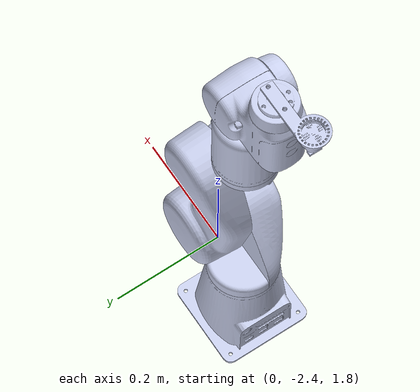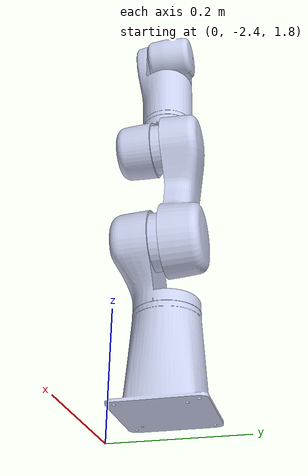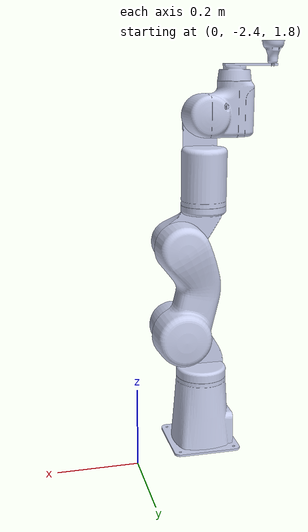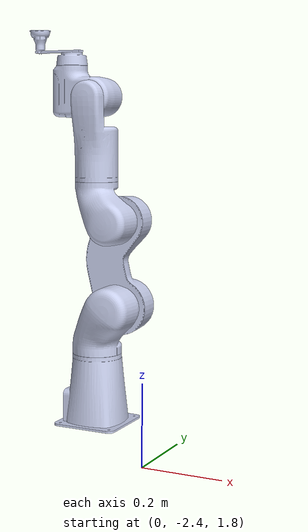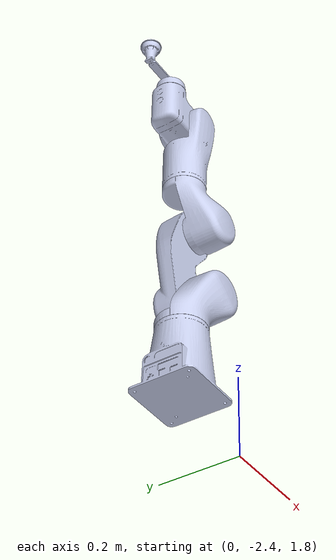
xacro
<?xml version="1.0" encoding="utf-8"?>
<!-- For more information, please see http://wiki.ros.org/sw_urdf_exporter -->

<robot name="eva_arm" xmlns:xacro="http://www.ros.org/wiki/xacro">

  <xacro:include filename="$(find eva_description)/urdf/eva_without_rail.gazebo" />

  <link name="world"/>

  <link
    name="base_link">
    <gravity>0</gravity>
    <inertial>
      <origin
        xyz="-0.00079256 0.072247 -4.2906E-06"
        rpy="0 0 0" />
      <mass
        value="2.2163" />
      <inertia
        ixx="0.0065308"
        ixy="-2.9126E-05"
        ixz="-1.2386E-06"
        iyy="0.0051738"
        iyz="-5.4387E-07"
        izz="0.0065939" />
    </inertial>
    <visual>
      <origin
        xyz="0 0 0"
        rpy="0 0 0" />
      <geometry>
        <mesh
          filename="package://eva_description/meshes/base_link.STL" />
      </geometry>
      <material
        name="">
        <color
          rgba="0.79216 0.81961 0.93333 1" />
      </material>
    </visual>
    <collision>
      <origin
        xyz="0 0 0"
        rpy="0 0 0" />
      <geometry>
        <mesh
          filename="package://eva_description/meshes/base_link.STL" />
      </geometry>
    </collision>
  </link>

  <joint
    name="world_to_base_link"
    type="fixed">
    <origin
      xyz="-0.145 -2.35 1.8795"
      rpy="0 0 0" />
    <parent
      link="world" />
    <child
      link="base_link" />
    <axis
      xyz="0 0 0" />
  </joint>

  <link
    name="link1">
    <gravity>0</gravity>
    <inertial>
      <origin
        xyz="0.033792 0.10158 0.028608"
        rpy="0 0 0" />
      <mass
        value="1.3679" />
      <inertia
        ixx="0.0024595"
        ixy="-0.0008869"
        ixz="-0.00013245"
        iyy="0.0021904"
        iyz="-0.00017806"
        izz="0.00385" />
    </inertial>
    <visual>
      <origin
        xyz="0 0 0"
        rpy="0 0 0" />
      <geometry>
        <mesh
          filename="package://eva_description/meshes/link1.STL" />
      </geometry>
      <material
        name="">
        <color
          rgba="0.79216 0.81961 0.93333 1" />
      </material>
    </visual>
    <collision>
      <origin
        xyz="0 0 0"
        rpy="0 0 0" />
      <geometry>
        <mesh
          filename="package://eva_description/meshes/link1.STL" />
      </geometry>
    </collision>
  </link>

  <joint
    name="joint01"
    type="revolute">
    <origin
      xyz="0 0 0.151"
      rpy="1.5708 0 0" />
    <parent
      link="base_link" />
    <child
      link="link1" />
    <axis
      xyz="0 1 0" />
    <limit
      lower="-3.12414"
      upper="3.12414"
      effort="100"
      velocity="2.16" />
    <dynamics damping="0.8" friction="10"/>
  </joint>

  <link
    name="link2">
    <gravity>0</gravity>
    <inertial>
      <origin
        xyz="-0.011054 0.095532 -0.041105"
        rpy="0 0 0" />
      <mass
        value="2.1464" />
      <inertia
        ixx="0.019567"
        ixy="0.00037463"
        ixz="0.00015985"
        iyy="0.0033754"
        iyz="-7.8572E-05"
        izz="0.021425" />
    </inertial>
    <visual>
      <origin
        xyz="0 0 0"
        rpy="0 0 0" />
      <geometry>
        <mesh
          filename="package://eva_description/meshes/link2.STL" />
      </geometry>
      <material
        name="">
        <color
          rgba="0.79216 0.81961 0.93333 1" />
      </material>
    </visual>
    <collision>
      <origin
        xyz="0 0 0"
        rpy="0 0 0" />
      <geometry>
        <mesh
          filename="package://eva_description/meshes/link2.STL" />
      </geometry>
    </collision>
  </link>

  <joint
    name="joint12"
    type="revolute">
    <origin
      xyz="0.056 0.1323 0"
      rpy="0 0 0" />
    <parent
      link="link1" />
    <child
      link="link2" />
    <axis
      xyz="0 0 1" />
    <limit
      lower="-2.70526"
      upper="1.22173"
      effort="150"
      velocity="1.0" />
    <dynamics damping="0.8" friction="10"/>
  </joint>

  <link
    name="link3">
    <gravity>0</gravity>
    <inertial>
      <origin
        xyz="-0.017599 0.021043 0.028835"
        rpy="0 0 0" />
      <mass
        value="1.0412" />
      <inertia
        ixx="0.0014019"
        ixy="0.0004906"
        ixz="-9.7827E-05"
        iyy="0.0013971"
        iyz="0.00010907"
        izz="0.0022277" />
    </inertial>
    <visual>
      <origin
        xyz="0 0 0"
        rpy="0 0 0" />
      <geometry>
        <mesh
          filename="package://eva_description/meshes/link3.STL" />
      </geometry>
      <material
        name="">
        <color
          rgba="0.79216 0.81961 0.93333 1" />
      </material>
    </visual>
    <collision>
      <origin
        xyz="0 0 0"
        rpy="0 0 0" />
      <geometry>
        <mesh
          filename="package://eva_description/meshes/link3.STL" />
      </geometry>
    </collision>
  </link>

  <joint
    name="joint23"
    type="revolute">
    <origin
      xyz="0 0.205 0"
      rpy="0 0 0" />
    <parent
      link="link2" />
    <child
      link="link3" />
    <axis
      xyz="0 0 1" />
    <limit
      lower="-2.79253"
      upper="0.785398"
      effort="100"
      velocity="1" />
    <dynamics damping="0.8" friction="10"/>
  </joint>
  <link
    name="link4">
    <gravity>0</gravity>
    <inertial>
      <origin
        xyz="6.3485E-05 0.082453 -0.0083688"
        rpy="0 0 0" />
      <mass
        value="1.2151" />
      <inertia
        ixx="0.0030376"
        ixy="-7.1559E-06"
        ixz="8.224E-07"
        iyy="0.0010632"
        iyz="0.00042179"
        izz="0.0034635" />
    </inertial>
    <visual>
      <origin
        xyz="0 0 0"
        rpy="0 0 0" />
      <geometry>
        <mesh
          filename="package://eva_description/meshes/link4.STL" />
      </geometry>
      <material
        name="">
        <color
          rgba="0.79216 0.81961 0.93333 1" />
      </material>
    </visual>
    <collision>
      <origin
        xyz="0 0 0"
        rpy="0 0 0" />
      <geometry>
        <mesh
          filename="package://eva_description/meshes/link4.STL" />
      </geometry>
    </collision>
  </link>

  <joint
    name="joint34"
    type="revolute">
    <origin
      xyz="-0.056 0.09401 0"
      rpy="3.1416 0 3.1416" />
    <parent
      link="link3" />
    <child
      link="link4" />
    <axis
      xyz="0 1 0" />
    <limit
      lower="-3.12414"
      upper="3.12414"
      effort="30"
      velocity="1" />
    <dynamics damping="0.8" friction="10"/>
  </joint>

  <link
    name="link5">
    <gravity>0</gravity>
    <inertial>
      <origin
        xyz="0.033633 0.0068289 0.0038977"
        rpy="0 0 0" />
      <mass
        value="1.1633" />
      <inertia
        ixx="0.0014093"
        ixy="-7.9912E-05"
        ixz="1.6075E-05"
        iyy="0.00064393"
        iyz="7.6612E-06"
        izz="0.0012682" />
    </inertial>
    <visual>
      <origin
        xyz="0 0 0"
        rpy="0 0 0" />
      <geometry>
        <mesh
          filename="package://eva_description/meshes/link5.STL" />
      </geometry>
      <material
        name="">
        <color
          rgba="0.79216 0.81961 0.93333 1" />
      </material>
    </visual>
    <collision>
      <origin
        xyz="0 0 0"
        rpy="0 0 0" />
      <geometry>
        <mesh
          filename="package://eva_description/meshes/link5.STL" />
      </geometry>
    </collision>
  </link>

  <joint
    name="joint45"
    type="revolute">
    <origin
      xyz="0 0.1966 0"
      rpy="0 0 0" />
    <parent
      link="link4" />
    <child
      link="link5" />
    <axis
      xyz="0 0 1" />
    <limit
      lower="-0.174533"
      upper="2.70526"
      effort="45"
      velocity="1" />
    <dynamics damping="0.8" friction="10"/>
  </joint>

  <link
    name="link6">
    <gravity>0</gravity>
    <inertial>
      <origin
        xyz="0.00010738 0.012024 3.1104E-05"
        rpy="0 0 0" />
      <mass
        value="0.089988" />
      <inertia
        ixx="3.1549E-05"
        ixy="9.9188E-08"
        ixz="-3.6831E-08"
        iyy="5.6401E-05"
        iyz="-1.5979E-09"
        izz="3.1789E-05" />
    </inertial>
    <visual>
      <origin
        xyz="0 0 0"
        rpy="0 0 0" />
      <geometry>
        <mesh
          filename="package://eva_description/meshes/link6.STL" />
      </geometry>
      <material
        name="">
        <color
          rgba="0.79216 0.81961 0.93333 1" />
      </material>
    </visual>
    <collision>
      <origin
        xyz="0 0 0"
        rpy="0 0 0" />
      <geometry>
        <mesh
          filename="package://eva_description/meshes/link6.STL" />
      </geometry>
    </collision>
  </link>

  <joint
    name="joint56"
    type="revolute">
    <origin
      xyz="0.065 0.0741 0"
      rpy="0 0 0" />
    <parent
      link="link5" />
    <child
      link="link6" />
    <axis
      xyz="0 1 0" />
    <limit
      lower="-3.12414"
      upper="3.12414"
      effort="30"
      velocity="1" />
    <dynamics damping="0.8" friction="10"/>
  </joint>

  <link
    name="light_link">
    <gravity>0</gravity>
    <inertial>
      <origin
        xyz="0.000 0.0 0.0"
        rpy="0 0 0" />
      <mass
        value="0.089988" />
      <inertia
        ixx="3.1549E-05"
        ixy="9.9188E-08"
        ixz="-3.6831E-08"
        iyy="5.6401E-05"
        iyz="-1.5979E-09"
        izz="3.1789E-05" />
    </inertial>
    <visual>
      <origin
        xyz="0 0 0"
        rpy="0 0 0" />
      <geometry>
          <mesh
          filename="package://eva_description/meshes/Led_plate_assembly.STL"
          scale="0.001 0.001 0.001" />
      </geometry>
      <material
        name="">
        <color
          rgba="0.79216 0.81961 0.93333 1" />
      </material>
    </visual>
    <collision>
      <origin
        xyz="0 0 0"
        rpy="0 0 0" />
      <geometry>
          <mesh
          filename="package://eva_description/meshes/Led_plate_assembly.STL"
          scale="0.001 0.001 0.001" />
      </geometry>
    </collision>
  </link>

  <joint
    name="joint67" type="fixed">
    <origin xyz="-0.025 0.028 0.025" rpy="-${pi/2} 0.0 0.0" />
    <parent link="link6" />
    <child link="light_link" />
  </joint>

  <link name="ee_link">
  </link>

  <joint name="ee_link_joint" type="fixed">
    <origin xyz="0.11 0.025 0.06" rpy="-${pi/2} ${pi} 0"/>
    <parent link="light_link"/>
    <child link="ee_link"/>
  </joint>

</robot>
